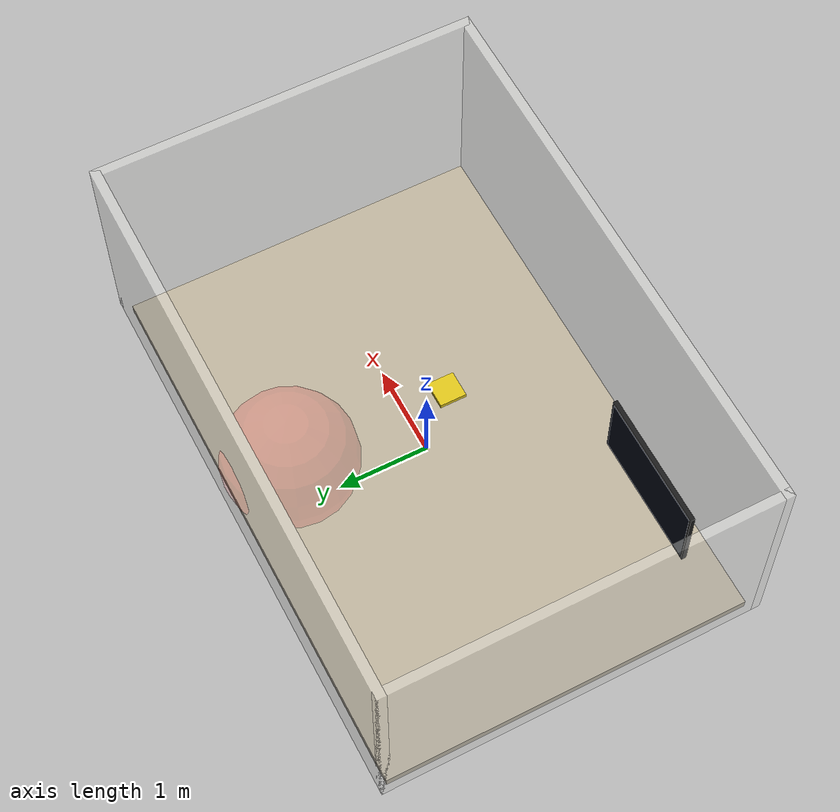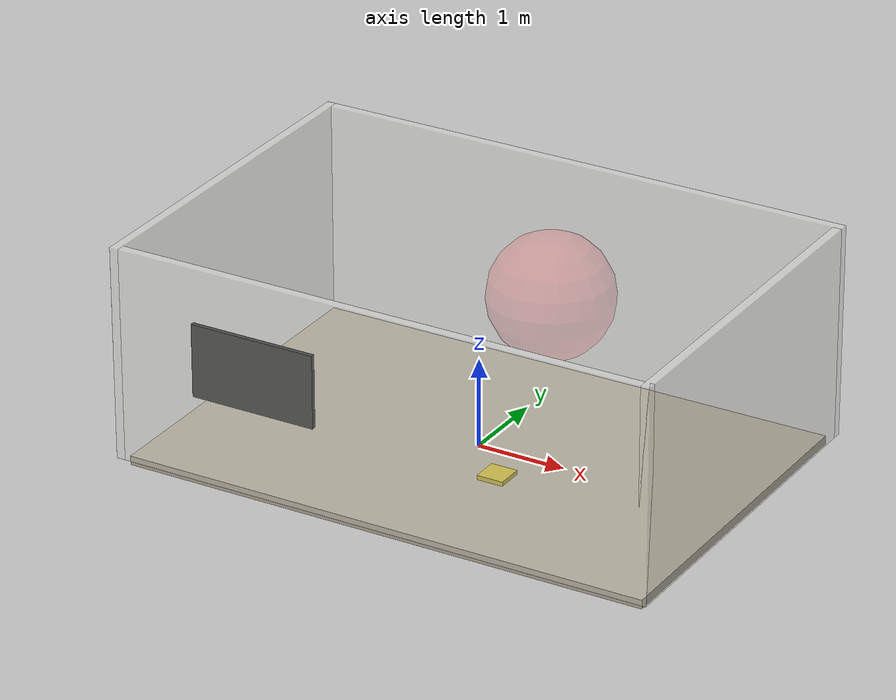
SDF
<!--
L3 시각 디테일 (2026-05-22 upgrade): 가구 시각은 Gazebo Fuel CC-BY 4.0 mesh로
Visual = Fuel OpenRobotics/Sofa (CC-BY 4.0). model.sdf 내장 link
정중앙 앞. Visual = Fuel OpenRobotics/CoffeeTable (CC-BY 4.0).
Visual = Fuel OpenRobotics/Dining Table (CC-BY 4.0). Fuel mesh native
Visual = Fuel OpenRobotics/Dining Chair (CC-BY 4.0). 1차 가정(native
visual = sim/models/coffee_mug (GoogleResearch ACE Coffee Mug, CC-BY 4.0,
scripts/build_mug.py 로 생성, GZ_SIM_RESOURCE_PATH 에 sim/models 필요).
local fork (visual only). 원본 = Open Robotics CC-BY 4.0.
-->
<sdf version="1.10">
 <world name="livingroom_base">
  <physics name="default" type="ode">
   <max_step_size>0.004</max_step_size>
   <real_time_factor>1.0</real_time_factor>
   <real_time_update_rate>250</real_time_update_rate>
  </physics>
  <gravity>0 0 -9.8066</gravity>
  <magnetic_field>6e-06 2.3e-05 -4.2e-05</magnetic_field>
  <atmosphere type="adiabatic"/>
  <spherical_coordinates>
   <surface_model>EARTH_WGS84</surface_model>
   <world_frame_orientation>ENU</world_frame_orientation>
   <latitude_deg>47.397971057728974</latitude_deg>
   <longitude_deg>8.546163739800146</longitude_deg>
   <elevation>0</elevation>
  </spherical_coordinates>
  <scene><ambient>0.95 0.95 0.95 1</ambient><background>0.85 0.88 0.92 1</background><grid>false</grid></scene>
  <light type="directional" name="sun">
   <pose>0 0 10 0 0 0</pose>
   <cast_shadows>false</cast_shadows>
   <diffuse>1.0 1.0 1.0 1</diffuse>
   <specular>0.3 0.3 0.3 1</specular>
   <direction>-0.3 0.3 -1</direction>
  </light>
  <light type="point" name="user_spot">
   <pose>0.0 1.5 2.2 0 0 0</pose>
   <cast_shadows>false</cast_shadows>
   <diffuse>0.7 0.7 0.7 1</diffuse>
   <specular>0.1 0.1 0.1 1</specular>
   <attenuation>
    <range>4.0</range>
    <linear>0.1</linear>
    <constant>0.2</constant>
    <quadratic>0.0</quadratic>
   </attenuation>
  </light>
  <model name="ground">
   <static>true</static>
   <pose>0 0 -0.05 0 0 0</pose>
   <link name="link">
    <collision name="col"><geometry><box><size>6.0 4.0 0.1</size></box></geometry></collision>
    <visual name="vis">
     <geometry><box><size>6.0 4.0 0.1</size></box></geometry>
     <material><ambient>0.72 0.68 0.60 1</ambient><diffuse>0.72 0.68 0.60 1</diffuse></material>
    </visual>
   </link>
  </model>
  <model name="wall_north">
   <static>true</static>
   <pose>0 2.05 1.2 0 0 0</pose>
   <link name="link">
    <collision name="col"><geometry><box><size>6.2 0.1 2.4</size></box></geometry></collision>
    <visual name="vis">
     <geometry><box><size>6.2 0.1 2.4</size></box></geometry>
     <material>
      <ambient>0.92 0.92 0.90 0.35</ambient>
      <diffuse>0.92 0.92 0.90 0.35</diffuse>
      <specular>0.1 0.1 0.1 0.35</specular>
     </material>
    </visual>
   </link>
  </model>
  <model name="wall_south">
   <static>true</static>
   <pose>0 -2.05 1.2 0 0 0</pose>
   <link name="link">
    <collision name="col"><geometry><box><size>6.2 0.1 2.4</size></box></geometry></collision>
    <visual name="vis">
     <geometry><box><size>6.2 0.1 2.4</size></box></geometry>
     <material>
      <ambient>0.92 0.92 0.90 0.35</ambient>
      <diffuse>0.92 0.92 0.90 0.35</diffuse>
      <specular>0.1 0.1 0.1 0.35</specular>
     </material>
    </visual>
   </link>
  </model>
  <model name="wall_east">
   <static>true</static>
   <pose>3.05 0 1.2 0 0 0</pose>
   <link name="link">
    <collision name="col"><geometry><box><size>0.1 4.2 2.4</size></box></geometry></collision>
    <visual name="vis">
     <geometry><box><size>0.1 4.2 2.4</size></box></geometry>
     <material>
      <ambient>0.92 0.92 0.90 0.35</ambient>
      <diffuse>0.92 0.92 0.90 0.35</diffuse>
      <specular>0.1 0.1 0.1 0.35</specular>
     </material>
    </visual>
   </link>
  </model>
  <model name="wall_west">
   <static>true</static>
   <pose>-3.05 0 1.2 0 0 0</pose>
   <link name="link">
    <collision name="col"><geometry><box><size>0.1 4.2 2.4</size></box></geometry></collision>
    <visual name="vis">
     <geometry><box><size>0.1 4.2 2.4</size></box></geometry>
     <material>
      <ambient>0.92 0.92 0.90 0.35</ambient>
      <diffuse>0.92 0.92 0.90 0.35</diffuse>
      <specular>0.1 0.1 0.1 0.35</specular>
     </material>
    </visual>
   </link>
  </model>
  <model name="sofa">
   <static>true</static>
   <pose>-1.8 1.5 0.4 0 0 0</pose>
   <link name="link">
    <collision name="col"><geometry><box><size>2.0 0.9 0.8</size></box></geometry></collision>
   </link>
  </model>
  <model name="living_table">
   <static>true</static>
   <pose>-1.8 0.5 0.2 0 0 0</pose>
   <link name="link">
    <collision name="col"><geometry><box><size>1.0 0.6 0.4</size></box></geometry></collision>
   </link>
  </model>
  <model name="dining_table">
   <static>true</static>
   <pose>2.0 -1.0 0.375 0 0 0</pose>
   <link name="link">
    <collision name="col"><geometry><box><size>1.4 0.8 0.75</size></box></geometry></collision>
   </link>
  </model>
  <model name="chair_left">
   <static>true</static>
   <pose>2.0 -0.4 0.425 0 0 0</pose>
   <link name="link">
    <collision name="col"><geometry><box><size>0.45 0.45 0.85</size></box></geometry></collision>
   </link>
  </model>
  <model name="chair_right">
   <static>true</static>
   <pose>2.0 -1.6 0.425 0 0 0</pose>
   <link name="link">
    <collision name="col"><geometry><box><size>0.45 0.45 0.85</size></box></geometry></collision>
   </link>
  </model>
  <model name="mug_left">
   <static>true</static>
   <pose>1.7 -1.0 0.75 0 0 0</pose>
   <link name="link">
    <collision name="col">
     <pose>0 0 0.0675 0 0 0</pose>
     <geometry><cylinder><radius>0.045</radius><length>0.135</length></cylinder></geometry>
    </collision>
   </link>
  </model>
  <model name="mug_center">
   <static>true</static>
   <pose>2.0 -1.0 0.75 0 0 0</pose>
   <link name="link">
    <collision name="col">
     <pose>0 0 0.0675 0 0 0</pose>
     <geometry><cylinder><radius>0.045</radius><length>0.135</length></cylinder></geometry>
    </collision>
   </link>
  </model>
  <model name="mug_right">
   <static>true</static>
   <pose>2.3 -1.0 0.75 0 0 0</pose>
   <link name="link">
    <collision name="col">
     <pose>0 0 0.0675 0 0 0</pose>
     <geometry><cylinder><radius>0.045</radius><length>0.135</length></cylinder></geometry>
    </collision>
   </link>
  </model>
  <model name="tv_stand">
   <static>true</static>
   <pose>-1.8 -1.5 0.3 0 0 0</pose>
   <link name="link">
    <collision name="col"><geometry><box><size>1.6 0.4 0.6</size></box></geometry></collision>
   </link>
  </model>
  <model name="tv_mesh">
   <static>true</static>
   <pose>-1.8 -1.5 1.015 0 0 1.5708</pose>
   <link name="link">
    <visual name="frame">
     <geometry><box><size>0.05 1.45 0.83</size></box></geometry>
     <material><ambient>0.06 0.06 0.06 1</ambient><diffuse>0.10 0.10 0.10 1</diffuse></material>
    </visual>
    <visual name="screen">
     <pose>0.026 0 0 0 0 0</pose>
     <geometry><box><size>0.005 1.40 0.78</size></box></geometry>
     <material>
      <ambient>0.02 0.03 0.08 1</ambient>
      <diffuse>0.03 0.05 0.10 1</diffuse>
      <emissive>0.08 0.12 0.20 1</emissive>
     </material>
    </visual>
   </link>
  </model>
  <model name="drone_dock">
   <static>true</static>
   <pose>0.5 -0.5 0.025 0 0 0</pose>
   <link name="link">
    <collision name="col"><geometry><box><size>0.3 0.3 0.05</size></box></geometry></collision>
    <visual name="vis">
     <geometry><box><size>0.3 0.3 0.05</size></box></geometry>
     <material><ambient>0.85 0.75 0.10 1</ambient><diffuse>0.85 0.75 0.10 1</diffuse></material>
    </visual>
   </link>
  </model>
  <model name="user_avoidance_visual">
   <static>true</static>
   <pose>0.0 1.5 1.1 0 0 0</pose>
   <link name="link">
    <visual name="vis">
     <geometry><sphere><radius>0.7</radius></sphere></geometry>
     <material>
      <ambient>1.0 0.3 0.3 0.25</ambient>
      <diffuse>1.0 0.3 0.3 0.25</diffuse>
      <specular>0.1 0.1 0.1 0.25</specular>
     </material>
    </visual>
   </link>
  </model>
 </world>
</sdf>
